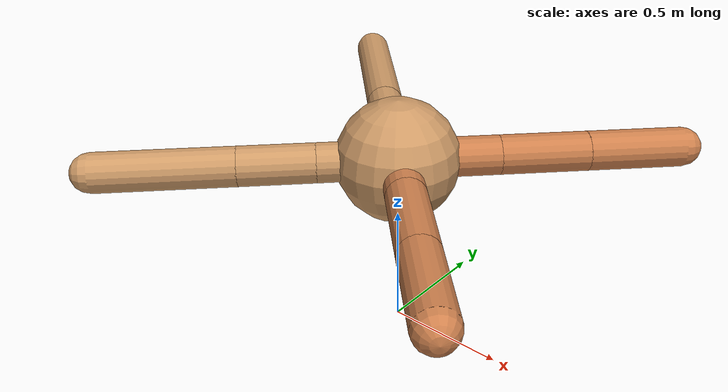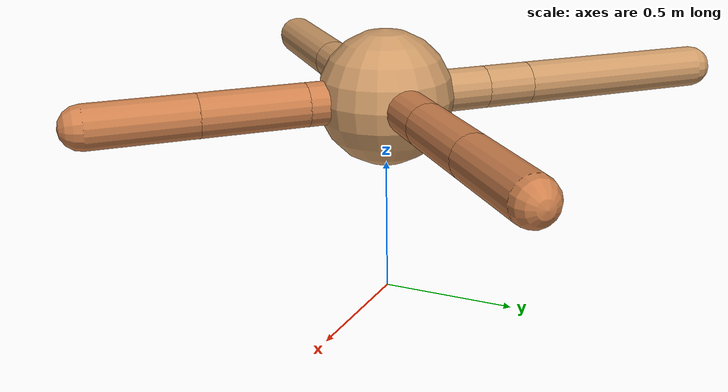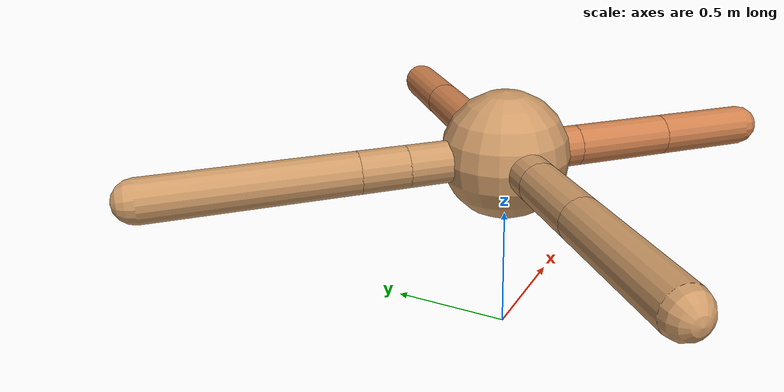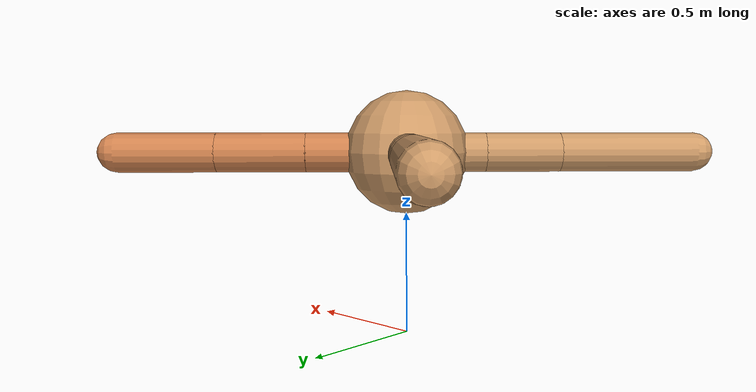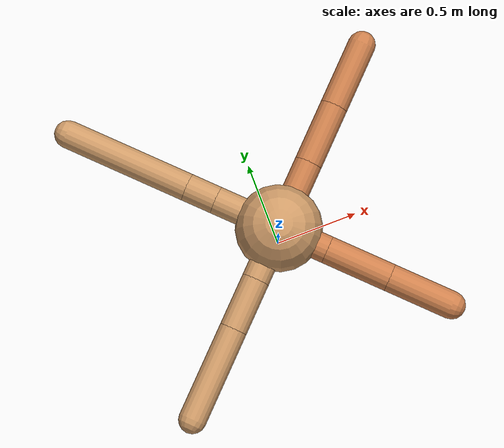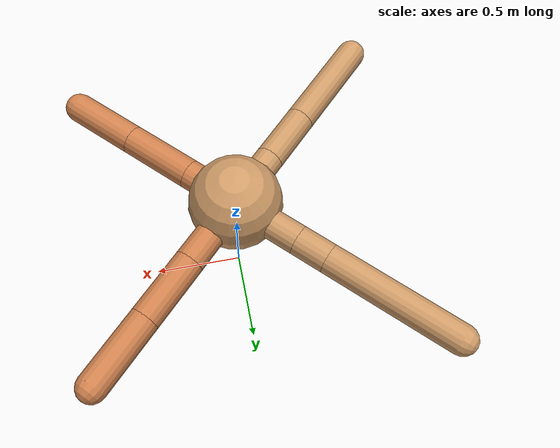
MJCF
<mujoco model="ant">
  <compiler angle="degree" coordinate="local" inertiafromgeom="true" />
  <option integrator="RK4" timestep="0.01" />
  <custom>
    <numeric data="0.0 0.0 0.55 1.0 0.0 0.0 0.0 0.0 1.0 0.0 -1.0 0.0 -1.0 0.0 1.0" name="init_qpos" />
  </custom>
  <default>
    <joint armature="1" damping="1" limited="true" />
    <geom conaffinity="0" condim="3" density="5.0" friction="1.5 0.1 0.1" margin="0.01" rgba="0.8 0.6 0.4 1" />
  </default>
  <worldbody>
    <body name="torso" pos="0 0 0.75">
      <geom name="torso_geom" pos="0 0 0" size="0.25" type="sphere" />

      <body name="front_left_leg" pos="0 0 0">
        <geom fromto="0.0 0.0 0.0 0.2877066758869215 0.2877066758869215 0.0" name="aux_1_geom" size="0.08" type="capsule" rgba=".8 .5 .3 1" />
        <body name="aux_1" pos="0.2877066758869215 0.2877066758869215 0.0">
          <joint axis="0 0 1" name="hip_1" pos="0.0 0.0 0.0" range="-40 40" type="hinge" />
          <geom fromto="0.0 0.0 0.0 0.25320161112695305 0.25320161112695305 0.0" name="left_leg_geom" size="0.08" type="capsule" rgba=".8 .5 .3 1" />
          <body pos="0.25320161112695305 0.25320161112695305 0.0" name="front_left_foot">
            <joint axis="-1 1 0" name="ankle_1" pos="0.0 0.0 0.0" range="30 100" type="hinge" />
            <geom fromto="0.0 0.0 0.0 0.277370784031384 0.277370784031384 0.0" name="left_ankle_geom" size="0.08" type="capsule" rgba=".8 .5 .3 1" />
          </body>
        </body>
      </body>
      <body name="front_right_leg" pos="0 0 0">
        <geom fromto="0.0 0.0 0.0 -0.27572342479002965 0.27572342479002965 0.0" name="aux_2_geom" size="0.08" type="capsule" />
        <body name="aux_2" pos="-0.27572342479002965 0.27572342479002965 0.0">
          <joint axis="0 0 1" name="hip_2" pos="0.0 0.0 0.0" range="-40 40" type="hinge" />
          <geom fromto="0.0 0.0 0.0 -0.12676525155962343 0.12676525155962343 0.0" name="right_leg_geom" size="0.08" type="capsule" />
          <body pos="-0.12676525155962343 0.12676525155962343 0.0" name="front_right_foot">
            <joint axis="1 1 0" name="ankle_2" pos="0.0 0.0 0.0" range="-100 -30" type="hinge" />
            <geom fromto="0.0 0.0 0.0 -0.5257223036955695 0.5257223036955695 0.0" name="right_ankle_geom" size="0.08" type="capsule" />
          </body>
        </body>
      </body>
      <body name="left_back_leg" pos="0 0 0">
        <geom fromto="0.0 0.0 0.0 -0.22741691449944457 -0.22741691449944457 0.0" name="aux_3_geom" size="0.08" type="capsule" />
        <body name="aux_3" pos="-0.22741691449944457 -0.22741691449944457 0.0">
          <joint axis="0 0 1" name="hip_3" pos="0.0 0.0 0.0" range="-40 40" type="hinge" />
          <geom fromto="0.0 0.0 0.0 -0.21628957451826444 -0.21628957451826444 0.0" name="back_leg_geom" size="0.08" type="capsule" />
          <body pos="-0.21628957451826444 -0.21628957451826444 0.0" name="left_back_foot">
            <joint axis="-1 1 0" name="ankle_3" pos="0.0 0.0 0.0" range="-100 -30" type="hinge" />
            <geom fromto="0.0 0.0 0.0 -0.3925310943253335 -0.3925310943253335 0.0" name="third_ankle_geom" size="0.08" type="capsule" />
          </body>
        </body>
      </body>
      <body name="right_back_leg" pos="0 0 0">
        <geom fromto="0.0 0.0 0.0 0.21227496277210564 -0.21227496277210564 0.0" name="aux_4_geom" size="0.08" type="capsule" rgba=".8 .5 .3 1" />
        <body name="aux_4" pos="0.21227496277210564 -0.21227496277210564 0.0">
          <joint axis="0 0 1" name="hip_4" pos="0.0 0.0 0.0" range="-40 40" type="hinge" />
          <geom fromto="0.0 0.0 0.0 0.27123405981612564 -0.27123405981612564 0.0" name="rightback_leg_geom" size="0.08" type="capsule" rgba=".8 .5 .3 1" />
          <body pos="0.27123405981612564 -0.27123405981612564 0.0" name="right_back_foot">
            <joint axis="1 1 0" name="ankle_4" pos="0.0 0.0 0.0" range="30 100" type="hinge" />
            <geom fromto="0.0 0.0 0.0 0.2695692807718585 -0.2695692807718585 0.0" name="fourth_ankle_geom" size="0.08" type="capsule" rgba=".8 .5 .3 1" />
          </body>
        </body>
      </body>
    </body>
  </worldbody>
  <actuator>
    <motor ctrllimited="true" ctrlrange="-1.0 1.0" joint="hip_4" gear="150" />
    <motor ctrllimited="true" ctrlrange="-1.0 1.0" joint="ankle_4" gear="150" />
    <motor ctrllimited="true" ctrlrange="-1.0 1.0" joint="hip_1" gear="150" />
    <motor ctrllimited="true" ctrlrange="-1.0 1.0" joint="ankle_1" gear="150" />
    <motor ctrllimited="true" ctrlrange="-1.0 1.0" joint="hip_2" gear="150" />
    <motor ctrllimited="true" ctrlrange="-1.0 1.0" joint="ankle_2" gear="150" />
    <motor ctrllimited="true" ctrlrange="-1.0 1.0" joint="hip_3" gear="150" />
    <motor ctrllimited="true" ctrlrange="-1.0 1.0" joint="ankle_3" gear="150" />
  </actuator>
</mujoco>
